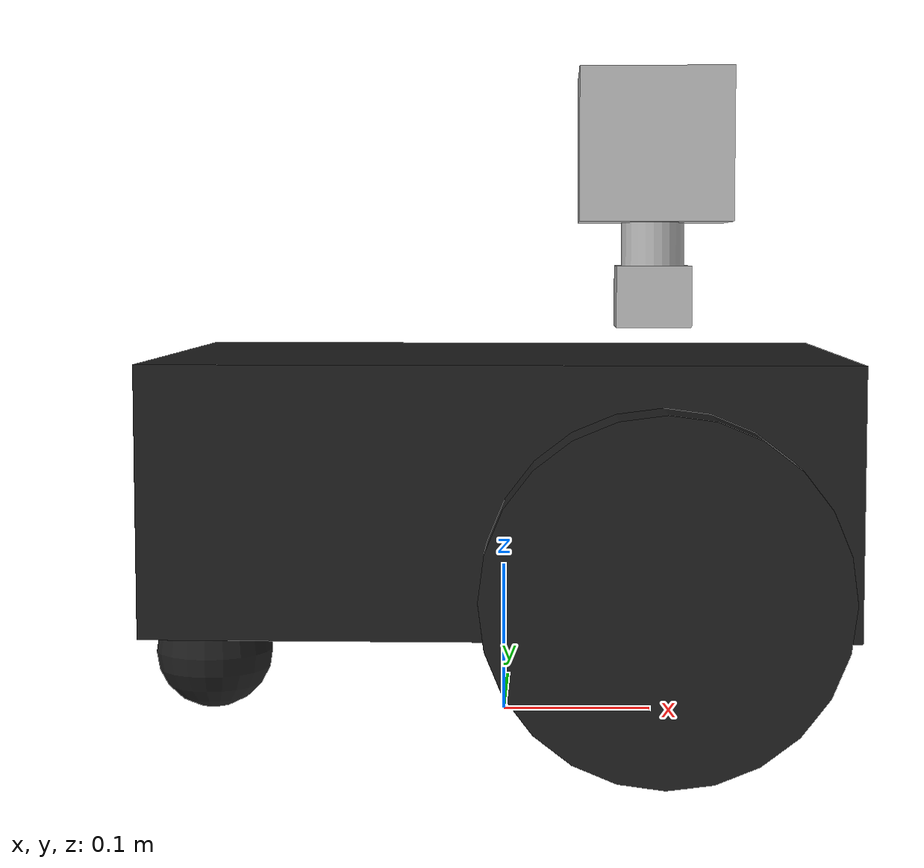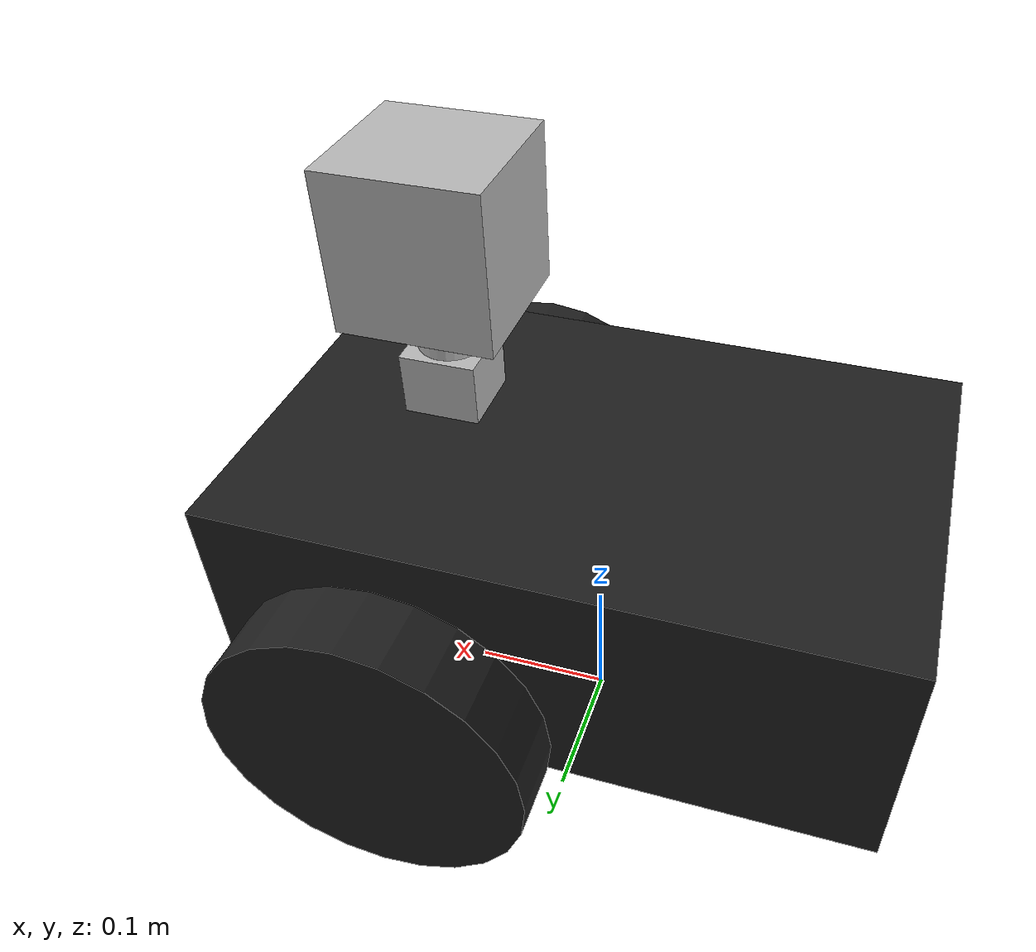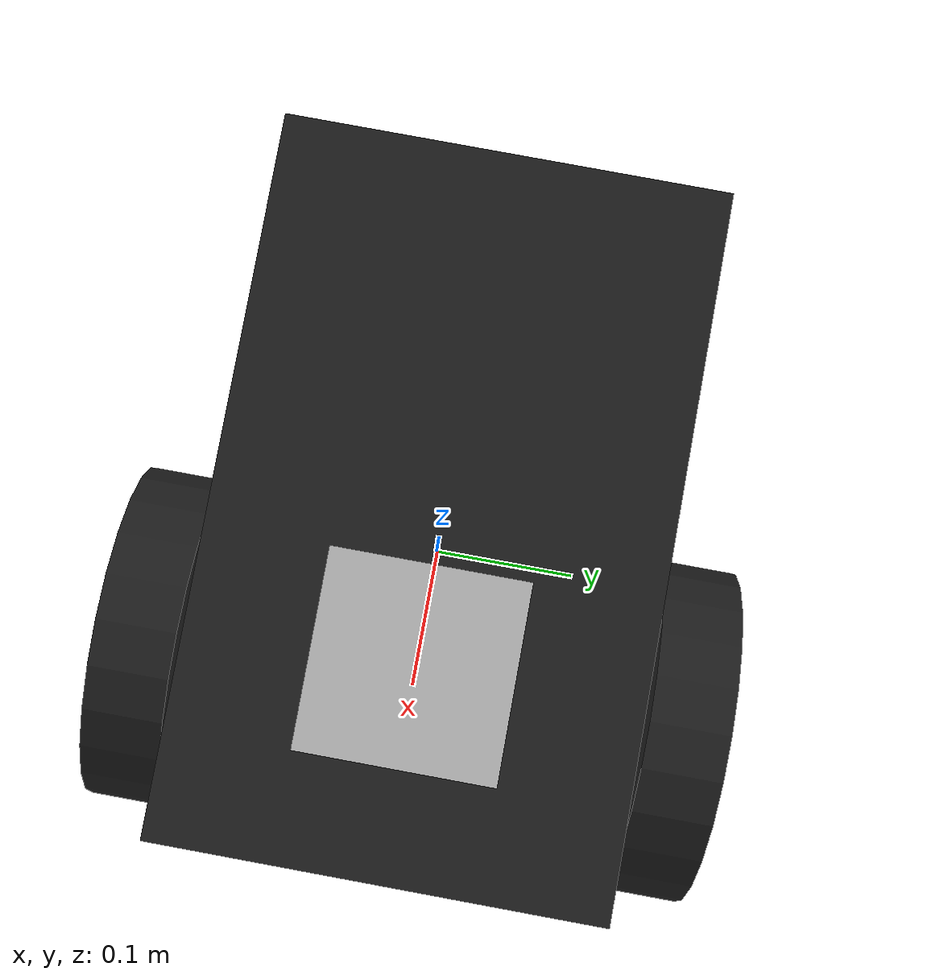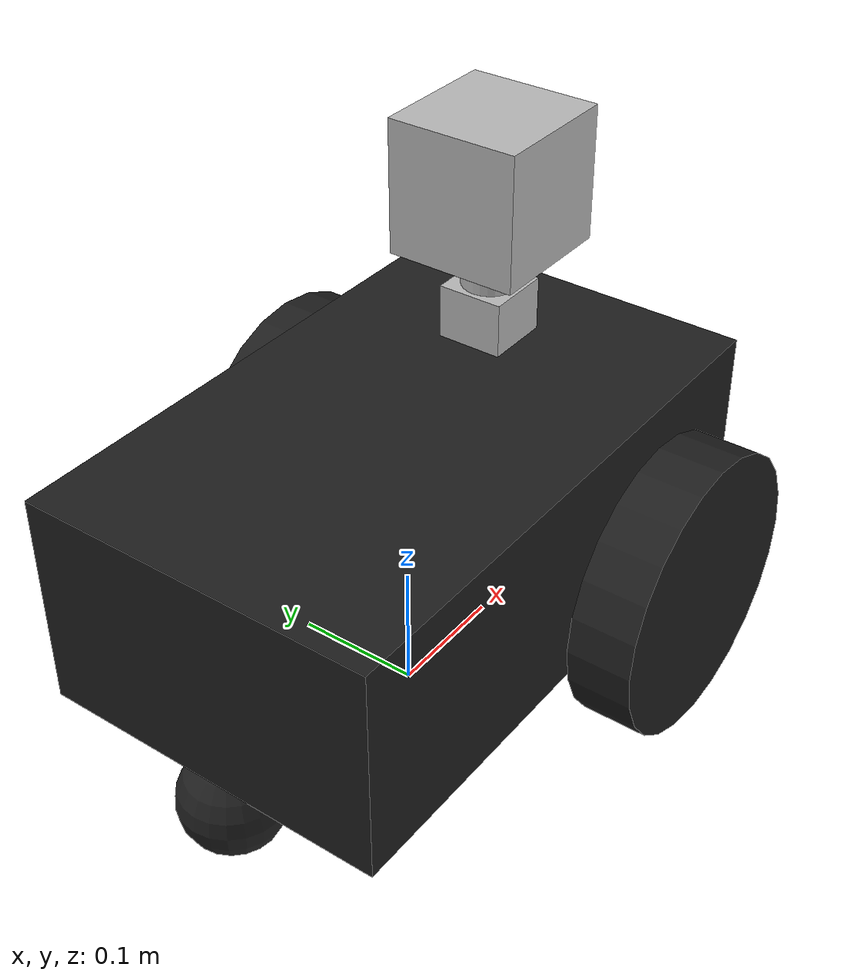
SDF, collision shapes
<?xml version="1.0" ?>
<sdf version="1.5">
  <model name="pioneer2dx_ros">
    <link name="chassis">
      <pose>0 0 0.16 0 0 0</pose>
      <inertial>
        <mass>5.67</mass>
        <inertia>
          <ixx>0.07</ixx>
          <iyy>0.08</iyy>
          <izz>0.10</izz>
          <ixy>0</ixy>
          <ixz>0</ixz>
          <iyz>0</iyz>
        </inertia>
      </inertial>
      <collision name="collision">
        <geometry>
          <box>
            <size>0.445 0.277 0.17</size>
          </box>
        </geometry>
      </collision>
      <collision name="castor_collision">
        <pose>-0.200 0 -0.12 0 0 0</pose>
        <geometry>
          <sphere>
            <radius>0.04</radius>
          </sphere>
        </geometry>
        <surface>
          <friction>
            <ode>
              <mu>0</mu>
              <mu2>0</mu2>
              <slip1>0</slip1>
              <slip2>0</slip2>
            </ode>
          </friction>
        </surface>
      </collision>
      <visual name="visual">
        <pose>0 0 0.04 0 0 0</pose>
        <geometry>
          <mesh>
            <uri>model://pioneer2dx_ros/meshes/chassis.dae</uri>
          </mesh>
        </geometry>
      </visual>
      <visual name="castor_visual">
        <pose>-0.200 0 -0.12 0 0 0</pose>
        <geometry>
          <sphere>
            <radius>0.04</radius>
          </sphere>
        </geometry>
        <material>
          <script>
            <uri>file://media/materials/scripts/gazebo.material</uri>
            <name>Gazebo/FlatBlack</name>
          </script>
        </material>
      </visual>
    </link>
    <link name="right_wheel">
      <pose>0.1 -.17 0.11 0 1.5707 1.5707</pose>
      <inertial>
        <mass>1.5</mass>
        <inertia>
          <ixx>0.0051</ixx>
          <iyy>0.0051</iyy>
          <izz>0.0090</izz>
          <ixy>0</ixy>
          <ixz>0</ixz>
          <iyz>0</iyz>
        </inertia>
      </inertial>
      <collision name="collision">
        <geometry>
          <cylinder>
            <radius>0.11</radius>
            <length>0.05</length>
          </cylinder>
        </geometry>
        <surface>
          <friction>
            <ode>
              <mu>100000.0</mu>
              <mu2>100000.0</mu2>
              <slip1>0</slip1>
              <slip2>0</slip2>
            </ode>
          </friction>
        </surface>
      </collision>
      <visual name="visual">
        <geometry>
          <cylinder>
            <radius>0.11</radius>
            <length>0.05</length>
          </cylinder>
        </geometry>
        <material>
          <script>
            <uri>file://media/materials/scripts/gazebo.material</uri>
            <name>Gazebo/FlatBlack</name>
          </script>
        </material>
      </visual>
    </link>
    <link name="left_wheel">
      <pose>0.1 .17 0.11 0 1.5707 1.5707</pose>
      <inertial>
        <mass>1.5</mass>
        <inertia>
          <ixx>0.0051</ixx>
          <iyy>0.0051</iyy>
          <izz>0.0090</izz>
          <ixy>0</ixy>
          <ixz>0</ixz>
          <iyz>0</iyz>
        </inertia>
      </inertial>
      <collision name="collision">
        <geometry>
          <cylinder>
            <radius>0.11</radius>
            <length>0.05</length>
          </cylinder>
        </geometry>
        <surface>
          <friction>
            <ode>
              <mu>100000.0</mu>
              <mu2>100000.0</mu2>
              <slip1>0</slip1>
              <slip2>0</slip2>
            </ode>
          </friction>
        </surface>
      </collision>
      <visual name="visual">
        <geometry>
          <cylinder>
            <radius>0.11</radius>
            <length>0.05</length>
          </cylinder>
        </geometry>
        <material>
          <script>
            <uri>file://media/materials/scripts/gazebo.material</uri>
            <name>Gazebo/FlatBlack</name>
          </script>
        </material>
      </visual>
    </link>
    <joint type="revolute" name="left_wheel_hinge">
      <pose>0 0 -0.03 0 0 0</pose>
      <child>left_wheel</child>
      <parent>chassis</parent>
      <axis>
        <xyz>0 1 0</xyz>
        <use_parent_model_frame>true</use_parent_model_frame>
      </axis>
    </joint>
    <joint type="revolute" name="right_wheel_hinge">
      <pose>0 0 0.03 0 0 0</pose>
      <child>right_wheel</child>
      <parent>chassis</parent>
      <axis>
        <xyz>0 1 0</xyz>
        <use_parent_model_frame>true</use_parent_model_frame>
      </axis>
    </joint>

    <plugin name="differential_drive_controller" filename="libgazebo_ros_diff_drive.so">
      <robotNamespace>pioneer2dx_ros</robotNamespace>
      <alwaysOn>true</alwaysOn>
      <updateRate>100.0</updateRate>
      <leftJoint>left_wheel_hinge</leftJoint>
      <rightJoint>right_wheel_hinge</rightJoint>
      <wheelSeparation>0.4</wheelSeparation>
      <wheelDiameter>0.215</wheelDiameter>
      <robotBaseFrame>chassis</robotBaseFrame>
      <torque>200</torque>
      <commandTopic>cmd_vel</commandTopic>
      <odometryTopic>odom</odometryTopic>
      <odometryFrame>odom</odometryFrame>
      <broadcastTF>true</broadcastTF>

      <legacyMode>0</legacyMode>

    </plugin>

<!-- Camera (hight is 100mm) -->
    <link name="camera_ros_link">
      <audio_sink/>
      <pose>0.1 0 0.383 0 0 0</pose>
      <inertial>
        <mass>0.1</mass>
        <inertia>
          <ixx>0.000166667</ixx>
          <iyy>0.000166667</iyy>
          <izz>0.000166667</izz>
        </inertia>
      </inertial>
      <collision name="collision">
        <geometry>
          <box>
            <size>0.1 0.1 0.1</size>
          </box>
        </geometry>
      </collision>
      <visual name="visual">
        <geometry>
          <box>
            <size>0.1 0.1 0.1</size>
          </box>
        </geometry>
      </visual>
<!-- THERMAL CAMERA -->
      <sensor type="camera" name="thermal_camera_sensor">
        <update_rate>10</update_rate>
        <camera name="camera_ros_thermal">
          <horizontal_fov>1.047</horizontal_fov>
          <image>
            <width>160</width>
            <height>120</height>
            <format>R8G8B8</format>
          </image>
          <clip>
            <near>0.01</near>
            <far>100</far>
          </clip>
        </camera>
        <plugin name="thermal_camera_controller" filename="libgazebo_ros_thermal_camera_pink.so">
          <robotNamespace>pioneer2dx_ros</robotNamespace>
          <alwaysOn>true</alwaysOn>
          <updateRate>10</updateRate>
          <imageTopicName>thermal_camera/image_raw</imageTopicName>
          <cameraInfoTopicName>thermal_camera/camera_info</cameraInfoTopicName>
          <frameName>thermal_optical_frame</frameName>
          <interface:camera name="thermal_camera_iface" />
        </plugin>
      </sensor> -->
<!-- CAMERA -->
      <sensor type="camera" name="camera_ros">
        <update_rate>20</update_rate>
        <camera name="camera_ros">
          <horizontal_fov>1.047</horizontal_fov>
          <image>
            <width>320</width>
            <height>240</height>
            <format>R8G8B8</format>
          </image>
          <clip>
            <near>0.1</near>
            <far>100</far>
          </clip>
     <!-- Noise is sampled independently per pixel on each frame.
          That pixel's noise value is added to each of its color
          channels, which at that point lie in the range [0,1]. -->
          <noise>
            <type>gaussian</type>
            <mean>0.0</mean>
            <stddev>0.007</stddev>
          </noise>
        </camera>
        <plugin name="camera_controller" filename="libgazebo_ros_camera.so">
          <robotNamespace>pioneer2dx_ros</robotNamespace>
          <alwaysOn>true</alwaysOn>
          <updateRate>0.0</updateRate>
          <cameraName>camera_ros</cameraName>
          <imageTopicName>image</imageTopicName>
          <cameraInfoTopicName>camera_ros_info</cameraInfoTopicName>
          <frameName>camera_ros_link</frameName>
          <hackBaseline>0.07</hackBaseline>
          <distortionK1>0.0</distortionK1>
          <distortionK2>0.0</distortionK2>
          <distortionK3>0.0</distortionK3>
          <distortionT1>0.0</distortionT1>
          <distortionT2>0.0</distortionT2>
        </plugin>
      </sensor>
    </link>
    <joint name="camera_joint" type="revolute">
      <parent>chassis</parent>
      <child>camera_ros_link</child>
      <pose>0 0 0 0 0 0</pose>
      <axis>
        <xyz>0.000000 0.000000 1.000000</xyz>
        <limit>
          <lower>0</lower>
          <upper>0</upper>
        </limit>
      </axis>
    </joint>

<!-- Hokuyo (hight is 70mm) -->
    <link name="hokuyo_ros_link">
      <pose>0.1 0 0.298 0 0 0</pose>
      <inertial>
        <mass>0.1</mass>
      </inertial>
      <visual name="visual">
        <geometry>
          <mesh>
            <uri>model://hokuyo_ros/meshes/hokuyo.dae</uri>
          </mesh>
        </geometry>
      </visual>
      <collision name="collision-base">
        <pose>0 0 -0.0145 0 0 0</pose>
        <geometry>
          <box>
            <size>0.05 0.05 0.041</size>
          </box>
        </geometry>
      </collision>
      <collision name="collision-top">
        <pose>0 0 0.0205 0 0 0</pose>
        <geometry>
          <cylinder>
            <radius>0.021</radius>
            <length>0.029</length>
          </cylinder>
        </geometry>
      </collision>
      <sensor type="ray" name="lms200">
        <always_on>true</always_on>
        <update_rate>30</update_rate>
        <pose>0 0 0 0 0 0</pose>
        <visualize>false</visualize>
        <ray>
          <scan>
            <horizontal>
            <samples>181</samples>
            <resolution>1</resolution>
            <min_angle>-1.570796</min_angle>
            <max_angle>1.570796</max_angle>
            </horizontal>
          </scan>
          <range>
            <min>0.08</min>
            <max>30.0</max>
            <resolution>0.01</resolution>
          </range>
        </ray>
        <plugin name="gazebo_ros_hokuyo_controller" filename="libgazebo_ros_laser.so">
          <robotNamespace>pioneer2dx_ros</robotNamespace>
          <gaussianNoise>0.005</gaussianNoise>
          <alwaysOn>true</alwaysOn>
          <updateRate>30</updateRate>
          <topicName>scan</topicName>
          <frameName>hokuyo_frame</frameName>
        </plugin>
      </sensor>
    </link>
    <joint name="hokuyo_joint" type="revolute">
      <parent>chassis</parent>
      <child>hokuyo_ros_link</child>
      <pose>0 0 0 0 0 0</pose>
      <axis>
        <xyz>0.000000 0.000000 1.000000</xyz>
        <limit>
          <lower>0</lower>
          <upper>0</upper>
        </limit>
      </axis>
    </joint>

  </model>
</sdf>
